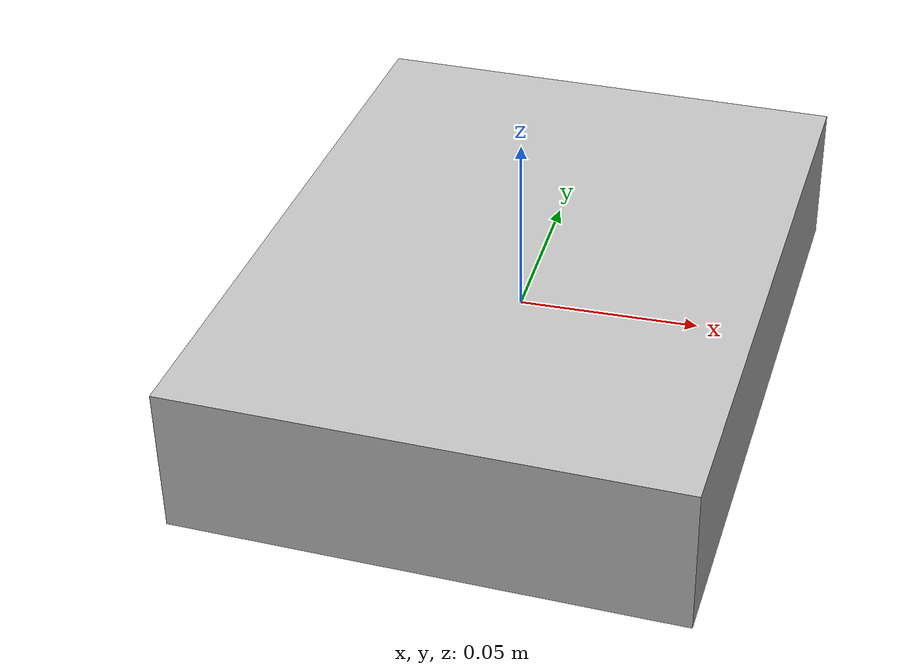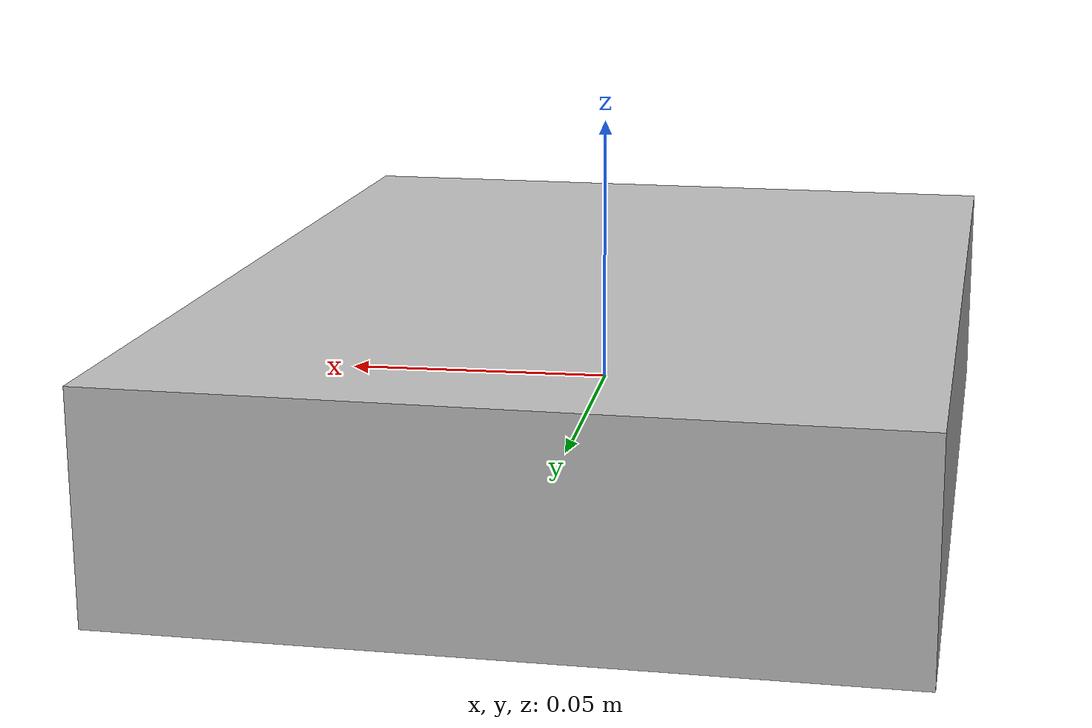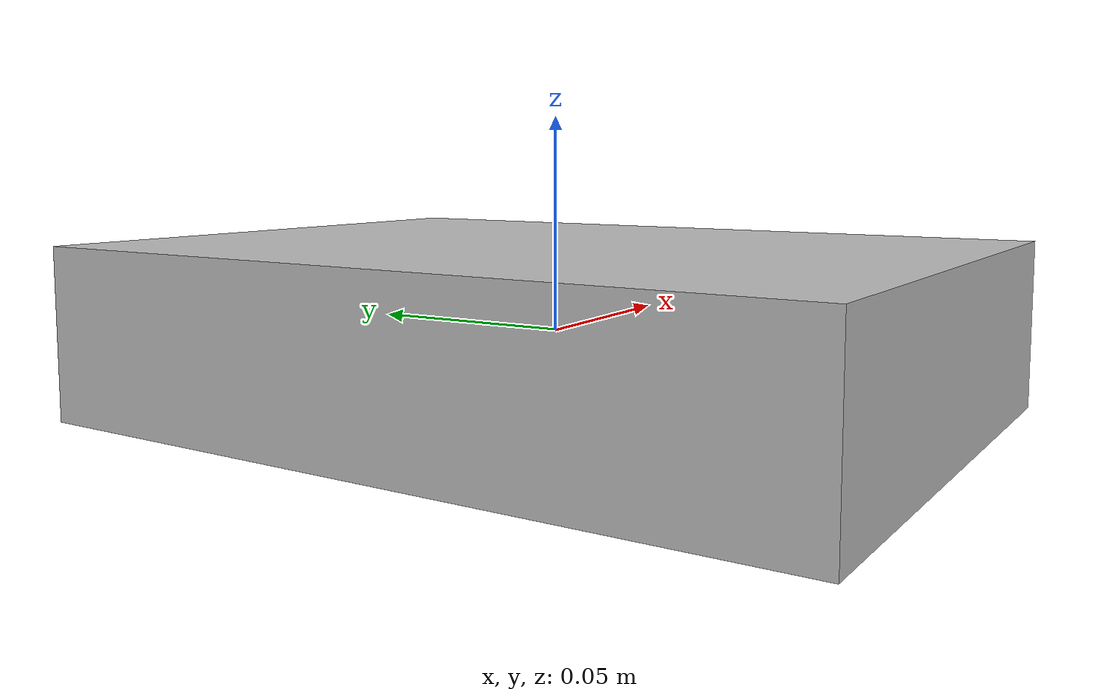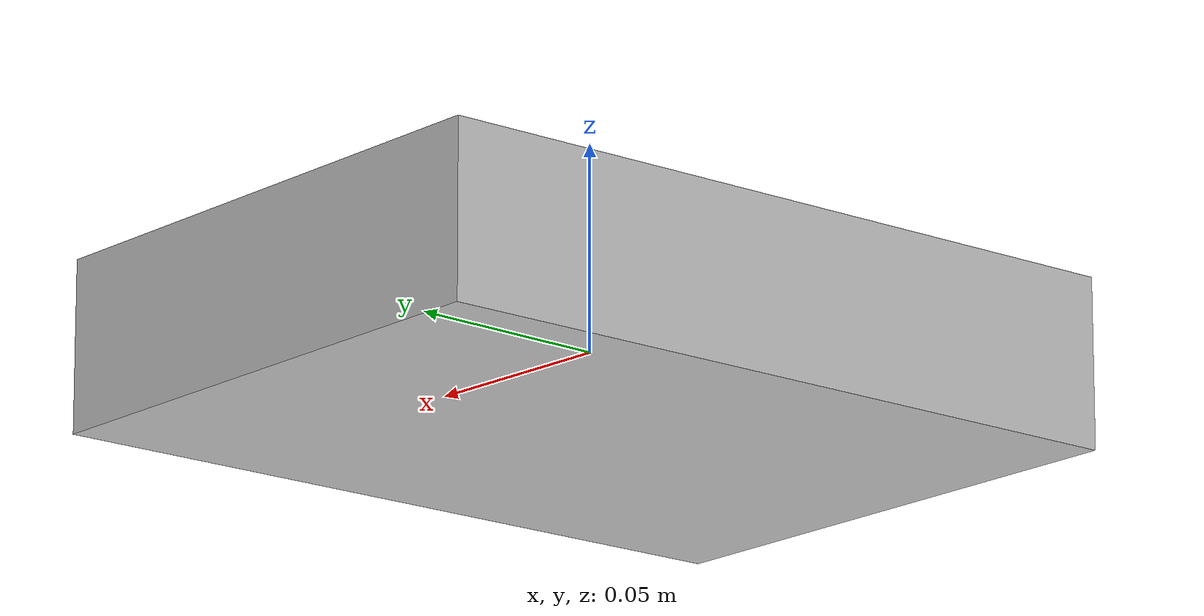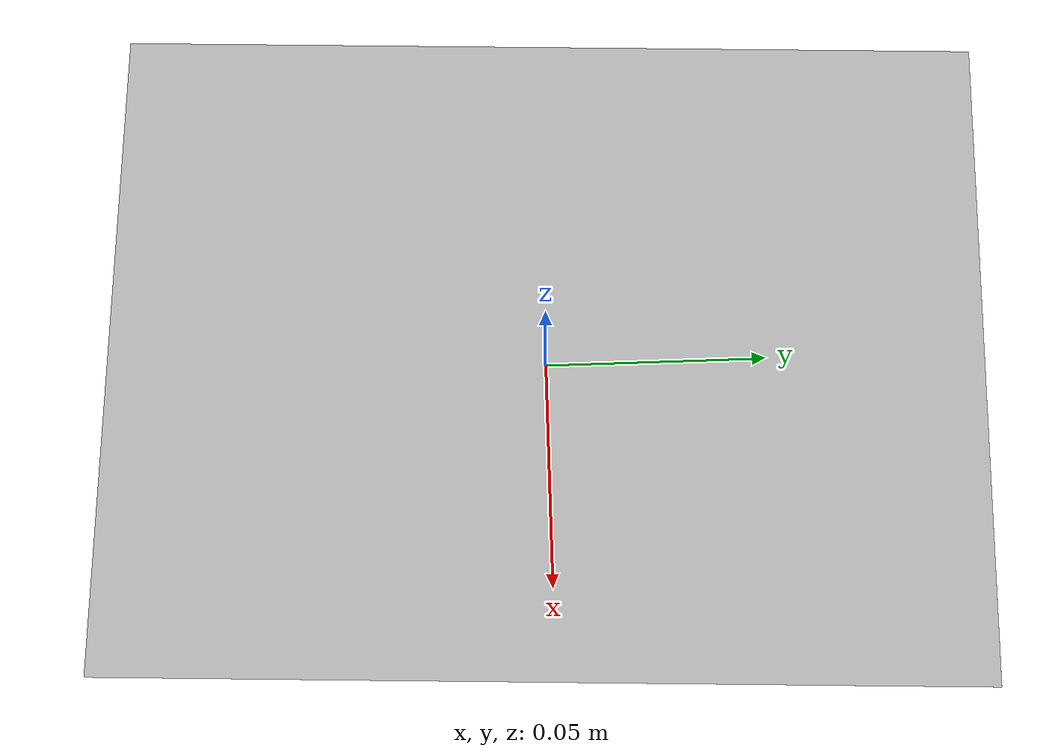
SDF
<?xml version="1.0"?>
<sdf version="1.7">
  <model name="book">
    <link name="book">
      <inertial>
        <pose>0.001000 0.000100 -0.000200 0 0 0</pose>
        <mass>0.05</mass>
        <inertia>
          <ixx>0.000151685543</ixx>
          <iyy>8.65663734e-05</iyy>
          <izz>0.000224171167</izz>
          <ixy>-2.87327877e-06</ixy>
          <ixz>1e-08</ixz>
          <iyz>1e-09</iyz>
        </inertia>
      </inertial>
      <visual name="box_0">
        <pose>0.001000 0.000100 -0.000200 0 0 -0.043900</pose>
        <geometry>
          <box><size>0.138000 0.186400 0.041100</size></box>
        </geometry>
        <material>
          <diffuse>0.75 0.75 0.75 1</diffuse>
        </material>
      </visual>
      <collision name="box_0_volume">
        <pose>0.001000 0.000100 -0.000200 0 0 -0.043900</pose>
        <geometry>
          <box><size>0.138000 0.186400 0.041100</size></box>
        </geometry>
        <drake:proximity_properties>
          <drake:compliant_hydroelastic/>
          <drake:hydroelastic_modulus> 3.0e7 </drake:hydroelastic_modulus>
          <drake:mesh_resolution_hint> 0.02 </drake:mesh_resolution_hint>
          <drake:hunt_crossley_dissipation>10</drake:hunt_crossley_dissipation>
          <drake:mu_dynamic>0.3</drake:mu_dynamic>
        </drake:proximity_properties>
      </collision>
    </link>
  </model>
</sdf>
